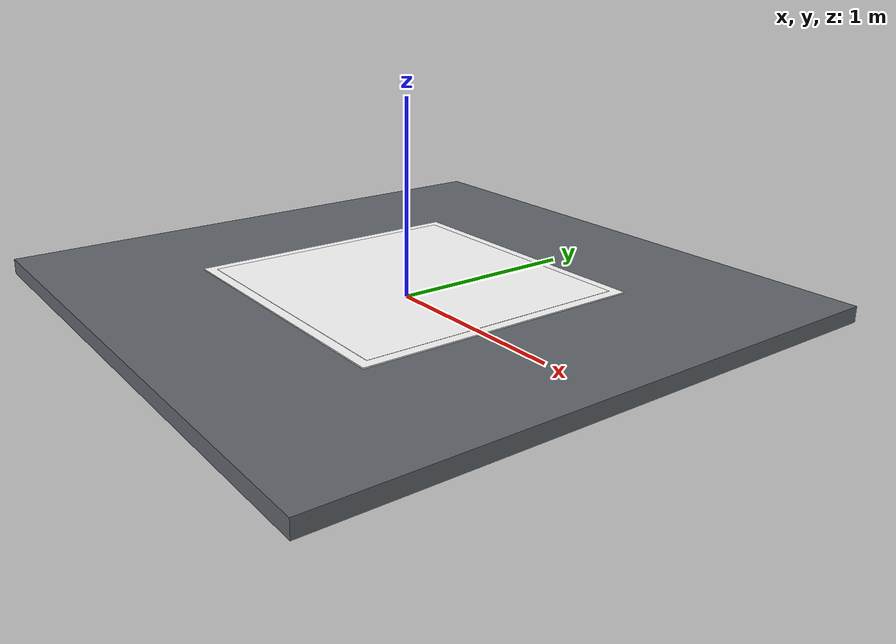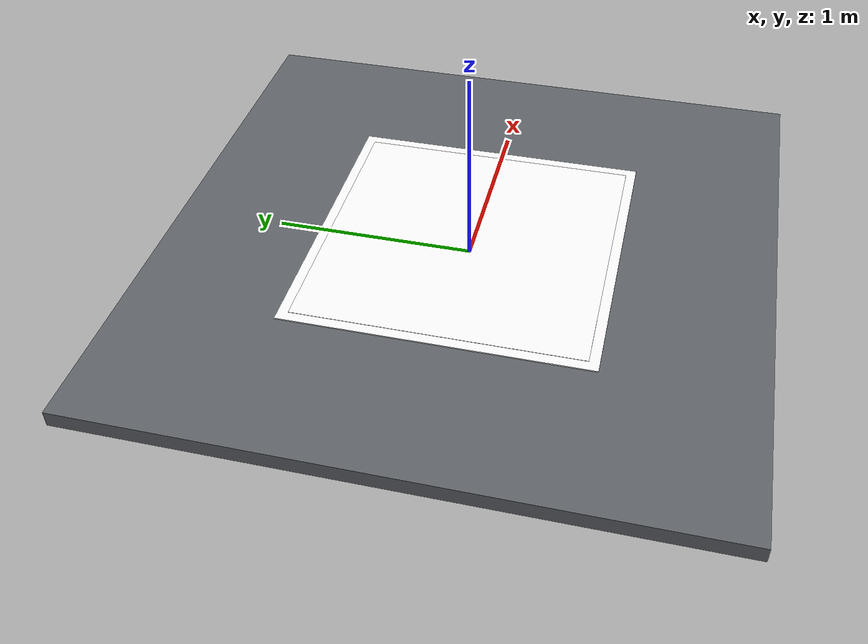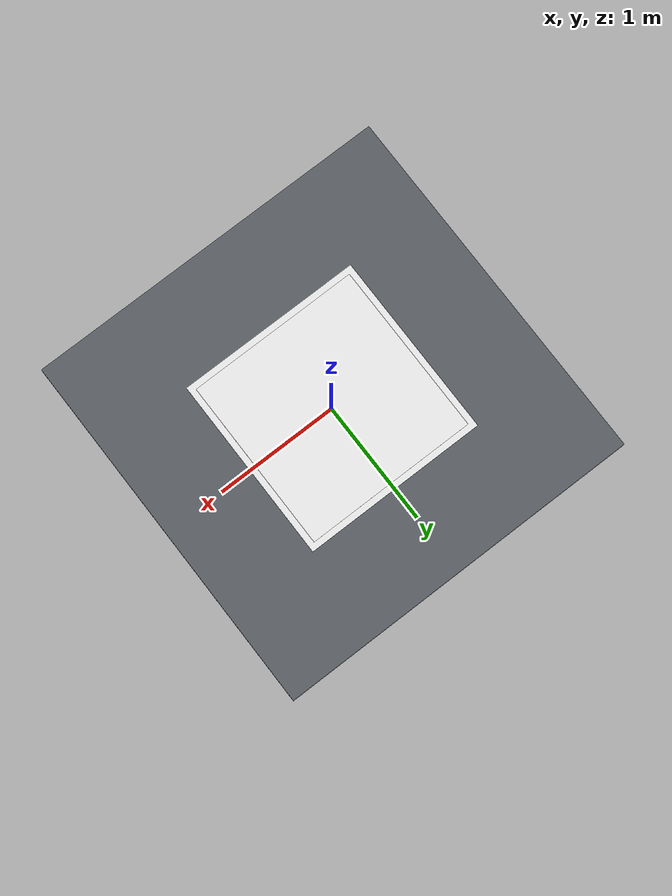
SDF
<?xml version="1.0"?>
<sdf version="1.9">
  <model name="stationary_landing_base">
    <static>true</static>
    <self_collide>false</self_collide>

    <link name="base_link">
      <collision name="pad_collision">
        <pose>0 0 0.04 0 0 0</pose>
        <geometry>
          <box><size>3.0 3.0 0.08</size></box>
        </geometry>
        <surface>
          <contact>
            <ode><max_vel>0.01</max_vel><min_depth>0.001</min_depth></ode>
          </contact>
          <friction>
            <ode><mu>10.0</mu><mu2>10.0</mu2></ode>
          </friction>
        </surface>
      </collision>
      <visual name="pad_visual">
        <pose>0 0 0.04 0 0 0</pose>
        <cast_shadows>false</cast_shadows>
        <geometry>
          <box><size>3.0 3.0 0.08</size></box>
        </geometry>
        <material>
          <ambient>0.32 0.34 0.36 1</ambient>
          <diffuse>0.38 0.40 0.42 1</diffuse>
          <specular>0.02 0.02 0.02 1</specular>
        </material>
      </visual>

      <sensor name="gps_sensor" type="navsat">
        <pose>0 0 0.10 0 0 0</pose>
        <always_on>true</always_on>
        <update_rate>5.0</update_rate>
        <navsat>
          <position_sensing>
            <horizontal>
              <noise type="gaussian"><mean>0.0</mean><stddev>0.0</stddev></noise>
            </horizontal>
            <vertical>
              <noise type="gaussian"><mean>0.0</mean><stddev>0.0</stddev></noise>
            </vertical>
          </position_sensing>
          <velocity_sensing>
            <horizontal>
              <noise type="gaussian"><mean>0.0</mean><stddev>0.01</stddev></noise>
            </horizontal>
            <vertical>
              <noise type="gaussian"><mean>0.0</mean><stddev>0.01</stddev></noise>
            </vertical>
          </velocity_sensing>
        </navsat>
      </sensor>
    </link>

    <include>
      <uri>model://apriltag_36h11_1</uri>
      <name>base_apriltag_36h11_1</name>
      <pose relative_to="base_link">0 0 0.086 0 0 0</pose>
    </include>
    <joint name="base_apriltag_fixed_joint" type="fixed">
      <parent>base_link</parent>
      <child>base_apriltag_36h11_1::tag_link</child>
    </joint>
  </model>
</sdf>

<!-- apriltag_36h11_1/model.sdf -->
<sdf version="1.9">
  <model name="apriltag_36h11_1">
    <static>false</static>
    <link name="tag_link">
      <inertial>
        <mass>0.02</mass>
        <inertia>
          <ixx>1e-4</ixx>
          <ixy>0</ixy>
          <ixz>0</ixz>
          <iyy>1e-4</iyy>
          <iyz>0</iyz>
          <izz>1e-4</izz>
        </inertia>
      </inertial>

      <visual name="tag_backing">
        <pose>0 0 -0.004 0 0 0</pose>
        <geometry>
          <box>
            <size>1.50 1.50 0.008</size>
          </box>
        </geometry>
        <material>
          <ambient>1 1 1 1</ambient>
          <diffuse>1 1 1 1</diffuse>
          <specular>0.05 0.05 0.05 1</specular>
        </material>
      </visual>

      <visual name="tag36h11_1">
        <pose>0 0 0.001 0 0 0</pose>
        <geometry>
          <plane>
            <normal>0 0 1</normal>
            <size>1.40 1.40</size>
          </plane>
        </geometry>
        <material>
          <ambient>1 1 1 1</ambient>
          <diffuse>1 1 1 1</diffuse>
          <specular>0 0 0 1</specular>
          <pbr>
            <metal>
              <albedo_map>model://apriltag_36h11_1/materials/textures/tag36h11_1.png</albedo_map>
              <roughness>1.0</roughness>
              <metalness>0.0</metalness>
            </metal>
          </pbr>
        </material>
      </visual>

    </link>
  </model>
</sdf>
